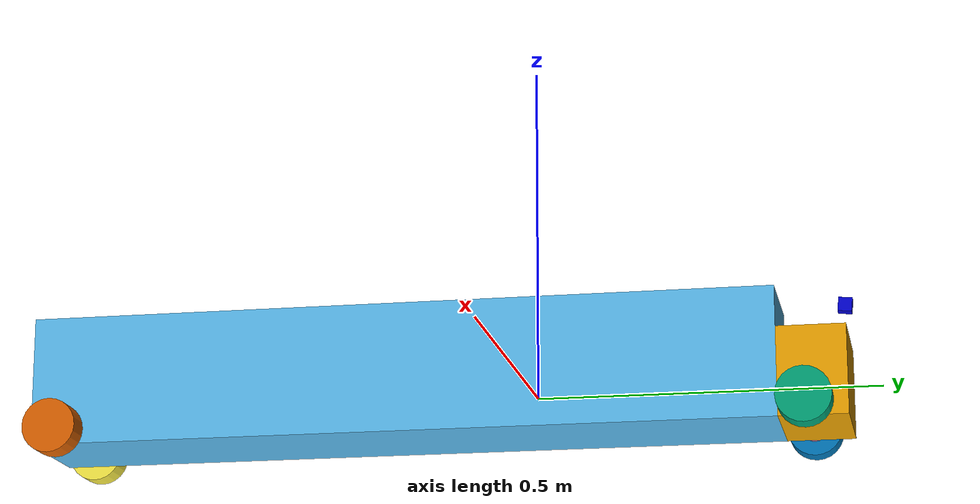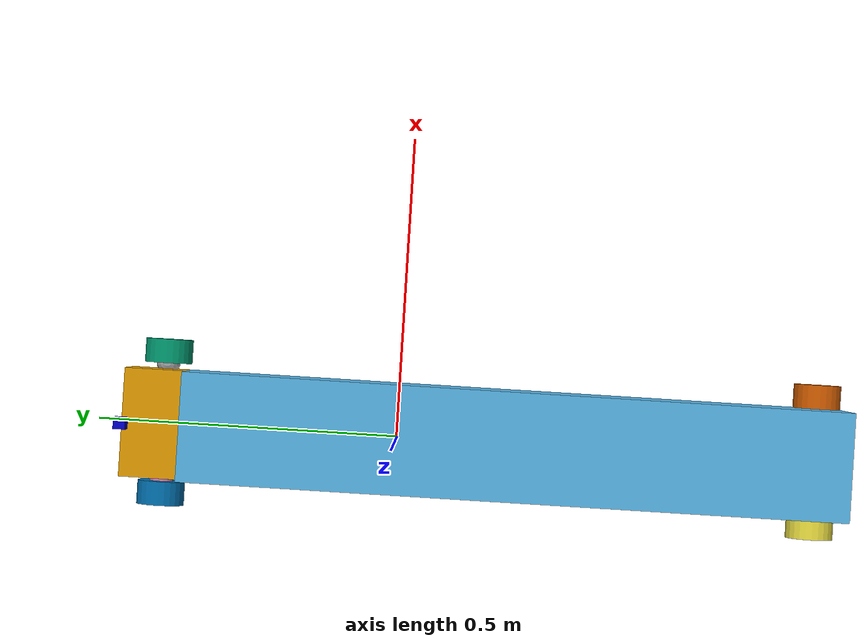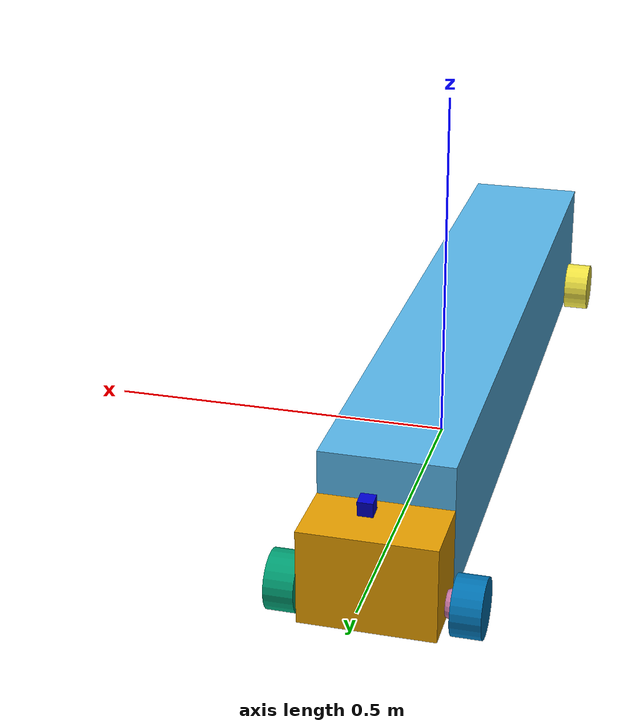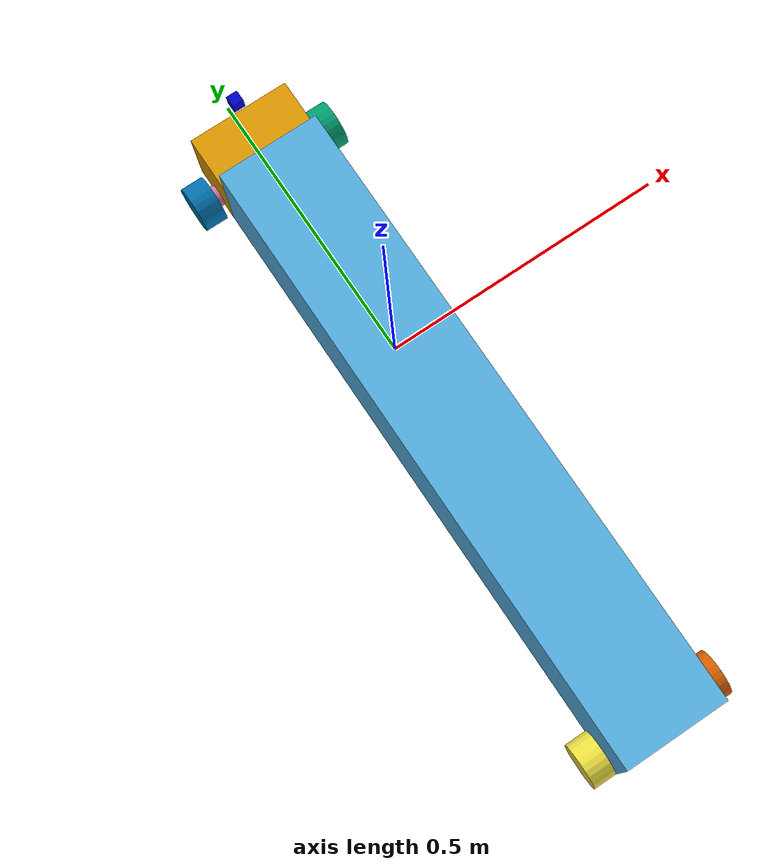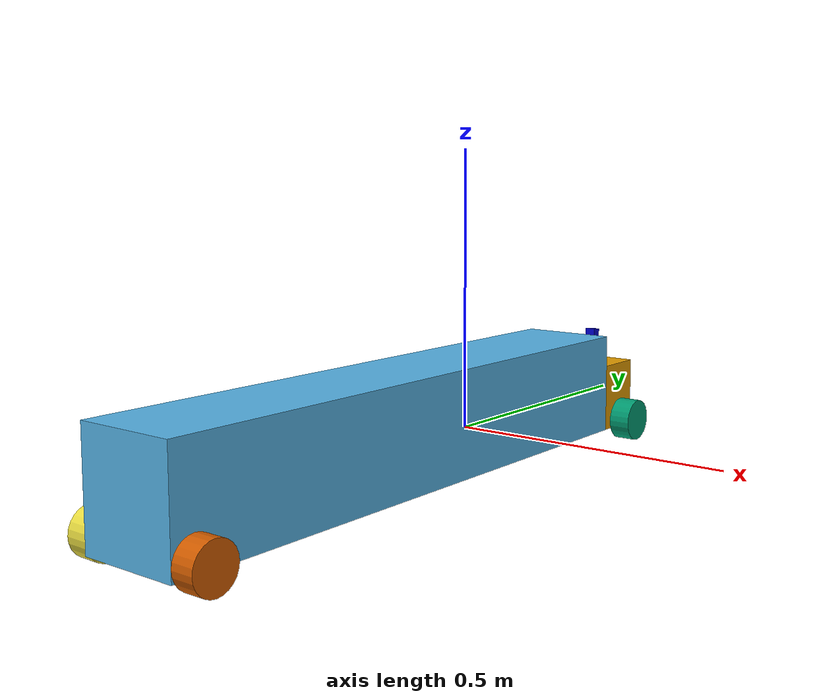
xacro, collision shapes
<?xml version="1.0" ?>
<robot name="FV" xmlns:xacro="http://www.ros.org/wiki/xacro">

  <xacro:include filename="$(find platooning_tracking_gazebo)/models/2_test/follower.gazebo" />

  <joint name="chassis" type="fixed">
    <parent link="FV__link_0"/>
    <child link="FV__link_1"/>
    <origin rpy="0  0  0" xyz="0      -0.19568  0.03714"/>
  </joint>

  <!-- front  -->
  <joint name="FV_front_left" type="continuous">
    <parent link="left_steering_hinge"/>
    <child link="left_wheel"/>
    <origin rpy="0      1.5707  0" xyz="-0.02   0   0"/>
    <axis xyz="0   0   -1"/>
	<limit effort="10.0" velocity="100.0"/>
  </joint>
  <joint name="FV_front_right" type="continuous">
    <parent link="right_steering_hinge"/>
    <child link="right_wheel"/>
    <origin rpy="0      1.5707  0" xyz="0.02   0   0"/>
	<axis xyz="0   0   -1"/>
    <limit effort="10.0" velocity="100.0"/>
  </joint>

  <!-- hinge -->
  <joint name="FV_left_steering_hinge_joint" type="revolute">
    <parent link="FV__link_0"/>
    <child link="left_steering_hinge"/>
    <origin rpy="0    0    0" xyz="-0.10     0.39431 -0.03785"/>
    <axis xyz="0   0   -1"/>
	<limit lower="-1.0" upper="1.0" effort="10.0" velocity="100.0"/>
  </joint>
  <joint name="FV_right_steering_hinge_joint" type="continuous">
    <parent link="FV__link_0"/>
    <child link="right_steering_hinge"/>
    <origin rpy="0    0    0" xyz="0.10     0.39431 -0.03785"/>
	<axis xyz="0   0   -1"/>
	<limit lower="-1.0" upper="1.0" effort="10.0" velocity="100.0"/>
  </joint>

  <!-- camera -->
  <joint name="camera_joint" type="fixed">
    <parent link="FV__link_0"/>
    <child link="camera"/>
    <origin rpy="0  0.1  1.5707" xyz="0  0.45  0.12"/>
	<axis xyz="0   0   1"/>
    <limit effort="-1.0" velocity="-1.0"/>
  </joint>

  <!-- lidar -->
  <joint name="lidar" type="revolute">
    <parent link="FV__link_0"/>
    <child link="hokuyo"/>
    <origin rpy="0  0  0" xyz="0       0.41413  0.08635"/>
    <axis xyz="1  0  0"/>
    <limit effort="-1.0" lower="-1.79769e+308" upper="1.79769e+308" velocity="-1.0"/>
  </joint>

 <!-- rear -->
  <joint name="FV_rear_left" type="continuous">
    <parent link="FV__link_1"/>
    <child link="FV__link_2_clone_0"/>
    <origin rpy="0      1.5707  0" xyz="-0.11  -0.51  -0.075"/>
    <axis xyz="0   0   1"/>
    <limit effort="10.0" velocity="100.0"/>
  </joint>
  <joint name="FV_rear_right" type="continuous">
    <parent link="FV__link_1"/>
    <child link="FV__link_2_clone_1"/>
    <origin rpy="0      1.5707  0" xyz="0.11  -0.51  -0.075"/>
    <axis xyz="0   0   1"/>
    <limit effort="10.0" velocity="100.0"/>
  </joint>

  <link name="FV__link_0">
    <inertial>
      <mass value="1"/>
      <origin rpy="0  0  0" xyz="0  0  0"/>
      <inertia ixx="0.166667" ixy="0" ixz="0" iyy="0.166667" iyz="0" izz="0.166667"/>
    </inertial>
    <collision name="FV__collision">
      <origin rpy="0  0  0" xyz="0       0.40431  0.00714"/>
      <geometry>
        <box size="0.18 0.1 0.13"/>
      </geometry>
    </collision>
    <visual name="FV__visual">
      <origin rpy="0  0  0" xyz="0       0.40431  0.00714"/>
      <geometry>
        <box size="0.18 0.1 0.13"/>
      </geometry>
    </visual>
  </link>
  <link name="FV__link_1">
    <inertial>
      <mass value="1"/>
      <origin rpy="0  0  0" xyz="0  0  0"/>
      <inertia ixx="0.166667" ixy="0" ixz="0" iyy="0.166667" iyz="0" izz="0.166667"/>
    </inertial>
    <collision name="FV__collision">
      <origin rpy="0  0  0" xyz="0  0  0"/>
      <geometry>
        <box size="0.18 1.1 0.19"/>
      </geometry>
    </collision>
    <visual name="FV__visual">
      <origin rpy="0  0  0" xyz="0  0  0"/>
      <geometry>
        <box size="0.18 1.1 0.19"/>
      </geometry>
    </visual>
  </link>
  <link name="right_wheel">
    <inertial>
      <mass value="1"/>
      <origin rpy="0  0  0" xyz="0  0  0"/>
      <inertia ixx="0.145833" ixy="0" ixz="0" iyy="0.145833" iyz="0" izz="0.125"/>
    </inertial>
    <collision name="FV__collision">
      <origin rpy="0  0  0" xyz="0  0  0"/>
      <geometry>
        <cylinder length="0.04" radius="0.04"/>
      </geometry>
    </collision>
    <visual name="FV__visual">
      <origin rpy="0  0  0" xyz="0  0  0"/>
      <geometry>
        <cylinder length="0.04" radius="0.04"/>
      </geometry>
    </visual>
  </link>
  <link name="FV__link_2_clone_0">
    <inertial>
      <mass value="1"/>
      <origin rpy="0  0  0" xyz="0  0  0"/>
      <inertia ixx="0.145833" ixy="0" ixz="0" iyy="0.145833" iyz="0" izz="0.125"/>
    </inertial>
    <collision name="FV__collision">
      <origin rpy="0  0  0" xyz="0  0  0"/>
      <geometry>
        <cylinder length="0.04" radius="0.04"/>
      </geometry>
    </collision>
    <visual name="FV__visual">
      <origin rpy="0  0  0" xyz="0  0  0"/>
      <geometry>
        <cylinder length="0.04" radius="0.04"/>
      </geometry>
    </visual>
  </link>
  <link name="left_wheel">
    <inertial>
      <mass value="1"/>
      <origin rpy="0  0  0" xyz="0  0  0"/>
      <inertia ixx="0.145833" ixy="0" ixz="0" iyy="0.145833" iyz="0" izz="0.125"/>
    </inertial>
    <collision name="FV__collision">
      <origin rpy="0  0  0" xyz="0  0  0"/>
      <geometry>
        <cylinder length="0.04" radius="0.04"/>
      </geometry>
    </collision>
    <visual name="FV__visual">
      <origin rpy="0  0  0" xyz="0  0  0"/>
      <geometry>
        <cylinder length="0.04" radius="0.04"/>
      </geometry>
    </visual>
  </link>
  <link name="FV__link_2_clone_1">
    <inertial>
      <mass value="1"/>
      <origin rpy="0  0  0" xyz="0  0  0"/>
      <inertia ixx="0.145833" ixy="0" ixz="0" iyy="0.145833" iyz="0" izz="0.125"/>
    </inertial>
    <collision name="FV__collision">
      <origin rpy="0  0  0" xyz="0  0  0"/>
      <geometry>
        <cylinder length="0.04" radius="0.04"/>
      </geometry>
    </collision>
    <visual name="FV__visual">
      <origin rpy="0  0  0" xyz="0  0  0"/>
      <geometry>
        <cylinder length="0.04" radius="0.04"/>
      </geometry>
    </visual>
  </link>

  <!-- hinge -->
  <link name="left_steering_hinge">
    <inertial>
      <mass value="0.3"/>
      <origin rpy="0  0  0" xyz="0  0  0"/>
      <inertia ixx="0.145833" ixy="0" ixz="0" iyy="0.145833" iyz="0" izz="0.125"/>
    </inertial>
    <collision>
      <origin rpy="0  0  0" xyz="0  0  0"/>
      <geometry>
        <sphere radius="0.020"/>
      </geometry>
    </collision>
    <visual>
      <origin rpy="0  0  0" xyz="0  0  0"/>
      <geometry>
        <sphere radius="0.020"/>
      </geometry>
    </visual>
  </link>
  <link name="right_steering_hinge">
    <inertial>
      <mass value="0.3"/>
      <origin rpy="0  0  0" xyz="0  0  0"/>
      <inertia ixx="0.145833" ixy="0" ixz="0" iyy="0.145833" iyz="0" izz="0.125"/>
    </inertial>
    <collision>
      <origin rpy="0  0  0" xyz="0  0  0"/>
      <geometry>
        <sphere radius="0.020"/>
      </geometry>
    </collision>
    <visual>
      <origin rpy="0  0  0" xyz="0  0  0"/>
      <geometry>
        <sphere radius="0.020"/>
      </geometry>
    </visual>
  </link>

  <!-- camera -->
  <link name="camera">
    <inertial>
      <mass value="0.02"/>
      <origin rpy="0  0  0" xyz="0  0  0"/>
      <inertia ixx="1.0" ixy="0.0" ixz="0.0" iyy="1.0" iyz="0.0" izz="1.0"/>
    </inertial>
    <visual>
      <material name="blue">
        <color rgba="0 0 0.8 1"/>
      </material>
      <geometry>
        <box size="0.02 0.02 0.02"/>
      </geometry>
    </visual>
    <collision>
      <geometry>
        <box size="0.02 0.02 0.02"/>
      </geometry>
    </collision>
  </link>

  <!-- lidar -->
  <link name="hokuyo">
    <inertial>
      <mass value="0.1"/>
      <origin rpy="0  0  0" xyz="0  0  0"/>
      <inertia ixx="0" ixy="0" ixz="0" iyy="0" iyz="0" izz="0"/>
    </inertial>
    <visual name="FV__visual">
      <origin rpy="0  0  0" xyz="0  0  0"/>
      <geometry>
        <mesh filename="package://rrbot_description/meshes/hokuyo.dae" scale="1.0 1.0 1.0"/>
      </geometry>
    </visual>
  </link>

  <!-- velocity -->
  <transmission name="tran1" type="SimpleTransmission">
    <type>transmission_interface/SimpleTransmission</type>
    <joint name="FV_front_left">
      <hardwareInterface>hardware_interface/EffortJointInterface</hardwareInterface>
    </joint>
    <actuator name="motor1">
      <hardwareInterface>hardware_interface/EffortJointInterface</hardwareInterface>
      <mechanicalReduction>1</mechanicalReduction>
    </actuator>
  </transmission>

  <transmission name="tran2" type="SimpleTransmission">
    <type>transmission_interface/SimpleTransmission</type>
    <joint name="FV_front_right">
      <hardwareInterface>hardware_interface/EffortJointInterface</hardwareInterface>
    </joint>
    <actuator name="motor2">
      <hardwareInterface>hardware_interface/EffortJointInterface</hardwareInterface>
      <mechanicalReduction>1</mechanicalReduction>
    </actuator>
  </transmission>

  <!-- steering -->
  <transmission name="tran3" type="SimpleTransmission">
    <type>transmission_interface/SimpleTransmission</type>
    <joint name="FV_left_steering_hinge_joint">
      <hardwareInterface>hardware_interface/EffortJointInterface</hardwareInterface>
    </joint>
    <actuator name="motor3">
      <hardwareInterface>hardware_interface/EffortJointInterface</hardwareInterface>
      <mechanicalReduction>1</mechanicalReduction>
    </actuator>
  </transmission>

  <transmission name="tran4" type="SimpleTransmission">
    <type>transmission_interface/SimpleTransmission</type>
    <joint name="FV_right_steering_hinge_joint">
      <hardwareInterface>hardware_interface/EffortJointInterface</hardwareInterface>
    </joint>
    <actuator name="motor4">
      <hardwareInterface>hardware_interface/EffortJointInterface</hardwareInterface>
      <mechanicalReduction>1</mechanicalReduction>
    </actuator>
  </transmission>

</robot>
